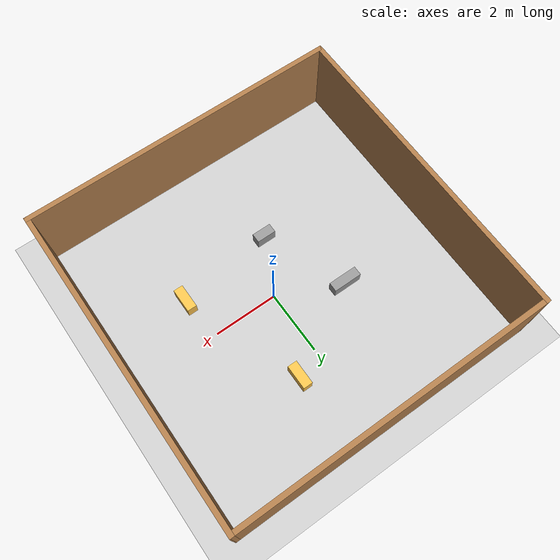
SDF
<sdf version="1.7">
 <world name="default">
  <light name="sun" type="directional">
   <pose>0 0 10 0 -0 0</pose>
   <diffuse>0.8 0.8 0.8 1</diffuse>
   <specular>0.2 0.2 0.2 1</specular>
   <attenuation>
    <range>1000</range>
    <constant>0.9</constant>
    <linear>0.01</linear>
    <quadratic>0.001</quadratic>
   </attenuation>
   <direction>-0.5 0.1 -0.9</direction>
   <spot><inner_angle>0</inner_angle><outer_angle>0</outer_angle><falloff>0</falloff></spot>
  </light>
  <model name="ground_plane">
   <static>1</static>
   <link name="link">
    <collision name="collision">
     <geometry><plane><normal>0 0 1</normal><size>100 100</size></plane></geometry>
     <surface><friction><ode><mu>100</mu><mu2>50</mu2></ode></friction></surface>
    </collision>
    <visual name="visual">
     <cast_shadows>0</cast_shadows>
     <geometry><plane><normal>0 0 1</normal><size>100 100</size></plane></geometry>
     <material>
      <script><uri>file://media/materials/scripts/gazebo.material</uri><name>Gazebo/Grey</name></script>
     </material>
    </visual>
   </link>
  </model>
  <gravity>0 0 -9.8</gravity>
  <magnetic_field>6e-06 2.3e-05 -4.2e-05</magnetic_field>
  <atmosphere type="adiabatic"/>
  <physics type="ode">
   <max_step_size>0.001</max_step_size>
   <real_time_factor>1</real_time_factor>
   <real_time_update_rate>1000</real_time_update_rate>
  </physics>
  <scene><ambient>0.4 0.4 0.4 1</ambient><background>0.7 0.7 0.7 1</background><shadows>1</shadows></scene>
  <spherical_coordinates>
   <surface_model>EARTH_WGS84</surface_model>
   <latitude_deg>0</latitude_deg>
   <longitude_deg>0</longitude_deg>
   <elevation>0</elevation>
   <heading_deg>0</heading_deg>
  </spherical_coordinates>
  <model name="wall_10x10m">
   <pose>4 0 0 0 -0 0</pose>
   <link name="Wall_12">
    <collision name="Wall_12_Collision">
     <geometry><box><size>10 0.15 2.5</size></box></geometry>
     <pose>0 0 1.25 0 -0 0</pose>
    </collision>
    <visual name="Wall_12_Visual">
     <pose>0 0 1.25 0 -0 0</pose>
     <geometry><box><size>10 0.15 2.5</size></box></geometry>
     <material>
      <script><uri>file://media/materials/scripts/gazebo.material</uri><name>Gazebo/Wood</name></script>
      <ambient>1 1 1 1</ambient>
     </material>
     <meta><layer>0</layer></meta>
    </visual>
    <pose>-4.25997 4.925 0 0 -0 0</pose>
   </link>
   <link name="Wall_13">
    <collision name="Wall_13_Collision">
     <geometry><box><size>10 0.15 2.5</size></box></geometry>
     <pose>0 0 1.25 0 -0 0</pose>
    </collision>
    <visual name="Wall_13_Visual">
     <pose>0 0 1.25 0 -0 0</pose>
     <geometry><box><size>10 0.15 2.5</size></box></geometry>
     <material>
      <script><uri>file://media/materials/scripts/gazebo.material</uri><name>Gazebo/Wood</name></script>
      <ambient>1 1 1 1</ambient>
     </material>
     <meta><layer>0</layer></meta>
    </visual>
    <pose>0.66503 0 0 0 -0 -1.5708</pose>
   </link>
   <link name="Wall_14">
    <collision name="Wall_14_Collision">
     <geometry><box><size>10 0.15 2.5</size></box></geometry>
     <pose>0 0 1.25 0 -0 0</pose>
    </collision>
    <visual name="Wall_14_Visual">
     <pose>0 0 1.25 0 -0 0</pose>
     <geometry><box><size>10 0.15 2.5</size></box></geometry>
     <material>
      <script><uri>file://media/materials/scripts/gazebo.material</uri><name>Gazebo/Wood</name></script>
      <ambient>1 1 1 1</ambient>
     </material>
     <meta><layer>0</layer></meta>
    </visual>
    <pose>-4.25997 -4.925 0 0 -0 3.14159</pose>
   </link>
   <link name="Wall_15">
    <collision name="Wall_15_Collision">
     <geometry><box><size>10 0.15 2.5</size></box></geometry>
     <pose>0 0 1.25 0 -0 0</pose>
    </collision>
    <visual name="Wall_15_Visual">
     <pose>0 0 1.25 0 -0 0</pose>
     <geometry><box><size>10 0.15 2.5</size></box></geometry>
     <material>
      <script><uri>file://media/materials/scripts/gazebo.material</uri><name>Gazebo/Wood</name></script>
      <ambient>1 1 1 1</ambient>
     </material>
     <meta><layer>0</layer></meta>
    </visual>
    <pose>-9.18497 0 0 0 -0 1.5708</pose>
   </link>
   <static>1</static>
  </model>
  <model name="Box_15x30">
   <link name="Wall">
    <pose>0 0 0.1985 0 -0 0</pose>
    <inertial>
     <mass>5</mass>
     <inertia><ixx>0.3089</ixx><iyy>0.1022</iyy><izz>0.2797</izz><ixy>0</ixy><ixz>0</ixz><iyz>0</iyz></inertia>
    </inertial>
    <collision name="Wall_Collision"><geometry><box><size>0.296 0.764 0.397</size></box></geometry></collision>
    <visual name="Wall_Visual">
     <geometry><box><size>0.296 0.764 0.397</size></box></geometry>
     <material>
      <script><uri>file://media/materials/scripts/gazebo.material</uri><name>Gazebo/Grey</name></script>
      <ambient>1 0.764706 0.305882 1</ambient>
     </material>
    </visual>
   </link>
   <static>1</static>
   <pose>0.818337 2.42122 0 0 -0 0</pose>
  </model>
  <model name="Box_24x15W">
   <link name="Wall">
    <pose>0 0 0.1985 0 -0 0</pose>
    <inertial>
     <mass>5</mass>
     <inertia><ixx>0.1022</ixx><iyy>0.2197</iyy><izz>0.1905</izz><ixy>0</ixy><ixz>0</ixz><iyz>0</iyz></inertia>
    </inertial>
    <collision name="Wall_Collision"><geometry><box><size>0.608 0.296 0.397</size></box></geometry></collision>
    <visual name="Wall_Visual">
     <geometry><box><size>0.608 0.296 0.397</size></box></geometry>
     <material>
      <script><uri>file://media/materials/scripts/gazebo.material</uri><name>Gazebo/Grey</name></script>
      <ambient>1 1 1 1</ambient>
     </material>
    </visual>
   </link>
   <static>1</static>
   <pose>-0.847735 -1.72558 0 0 -0 0</pose>
  </model>
  <model name="Box_36x15W">
   <link name="Wall">
    <pose>0 0 0.1985 0 -0 0</pose>
    <inertial>
     <mass>5</mass>
     <inertia><ixx>0.1022</ixx><iyy>0.4107</iyy><izz>0.3815</izz><ixy>0</ixy><ixz>0</ixz><iyz>0</iyz></inertia>
    </inertial>
    <collision name="Wall_Collision"><geometry><box><size>0.91 0.296 0.397</size></box></geometry></collision>
    <visual name="Wall_Visual">
     <geometry><box><size>0.91 0.296 0.397</size></box></geometry>
     <material>
      <script><uri>file://media/materials/scripts/gazebo.material</uri><name>Gazebo/Grey</name></script>
      <ambient>1 1 1 1</ambient>
     </material>
    </visual>
   </link>
   <static>1</static>
   <pose>-1.93744 0.868574 0 0 -0 0</pose>
  </model>
  <model name="Box_15x30_0">
   <link name="Wall">
    <pose>0 0 0.1985 0 -0 0</pose>
    <inertial>
     <mass>5</mass>
     <inertia><ixx>0.3089</ixx><iyy>0.1022</iyy><izz>0.2797</izz><ixy>0</ixy><ixz>0</ixz><iyz>0</iyz></inertia>
    </inertial>
    <collision name="Wall_Collision"><geometry><box><size>0.296 0.764 0.397</size></box></geometry></collision>
    <visual name="Wall_Visual">
     <geometry><box><size>0.296 0.764 0.397</size></box></geometry>
     <material>
      <script><uri>file://media/materials/scripts/gazebo.material</uri><name>Gazebo/Grey</name></script>
      <ambient>1 0.764706 0.305882 1</ambient>
     </material>
    </visual>
   </link>
   <static>1</static>
   <pose>2.20583 -1.33693 0 0 -0 0</pose>
  </model>
 </world>
</sdf>
